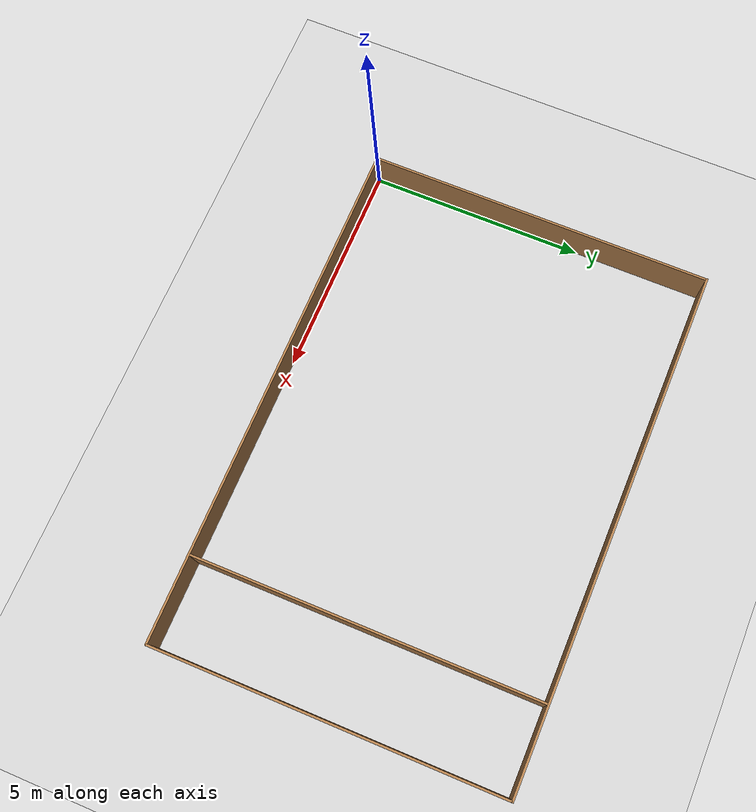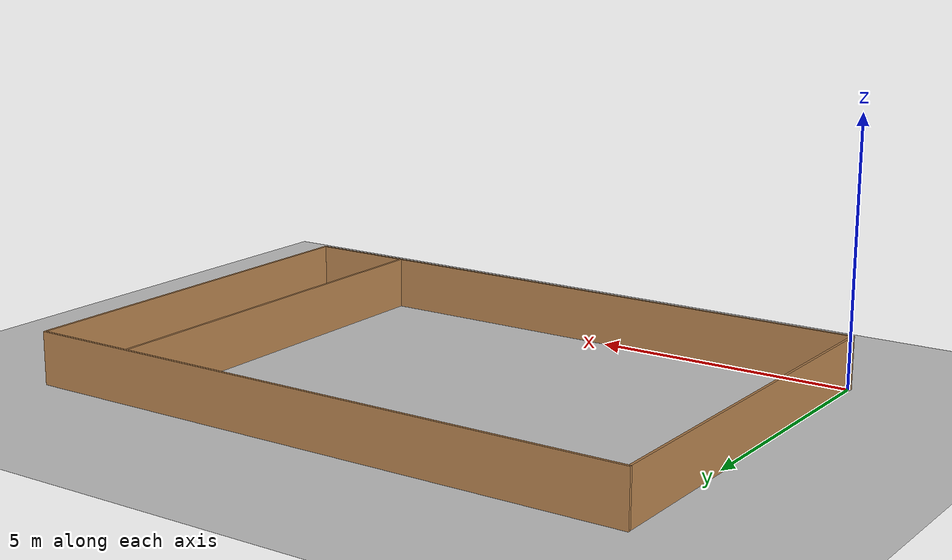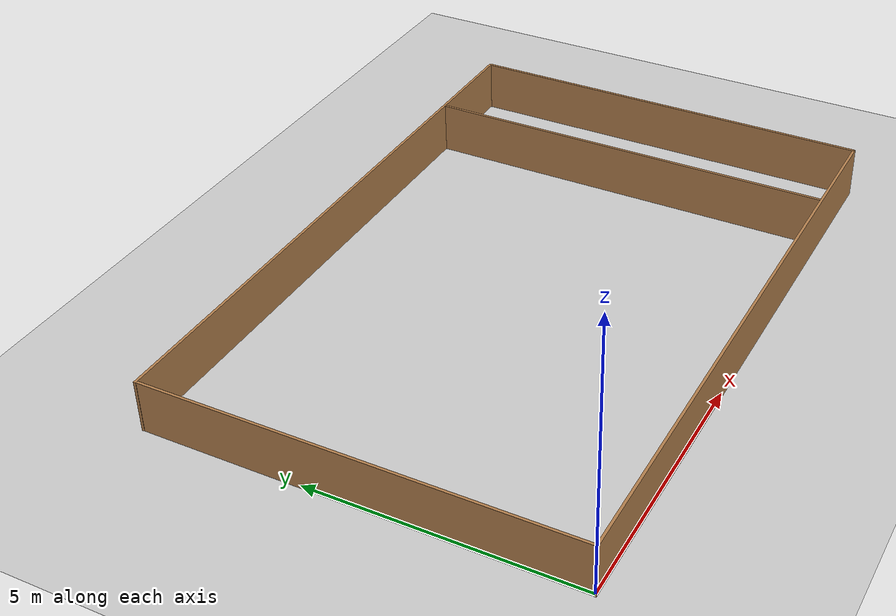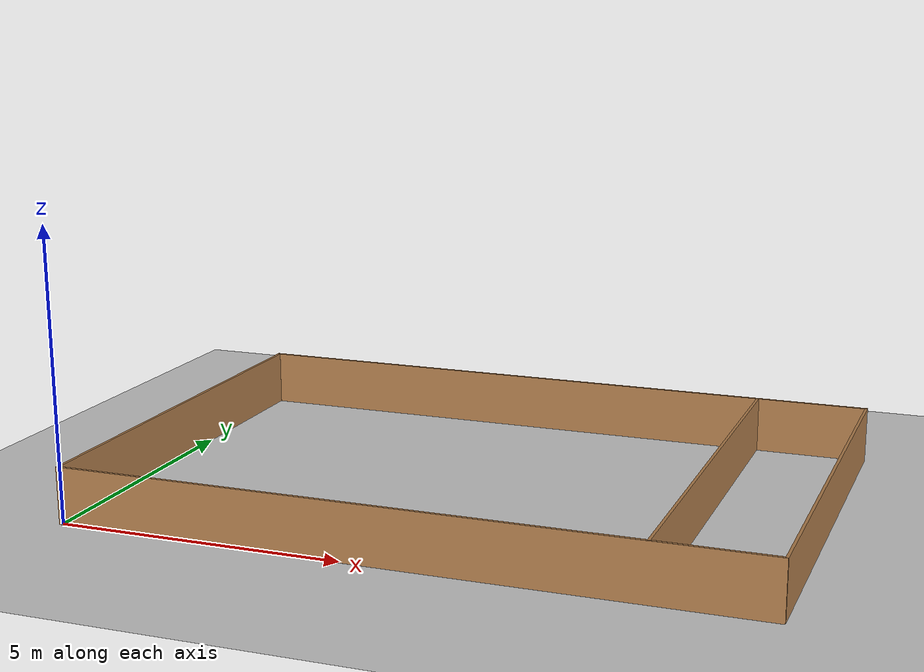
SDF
<sdf version="1.7">
 <world name="default">
  <light name="sun" type="directional">
   <pose>0 0 10 0 -0 0</pose>
   <diffuse>0.8 0.8 0.8 1</diffuse>
   <specular>0.2 0.2 0.2 1</specular>
   <attenuation>
    <range>1000</range>
    <constant>0.9</constant>
    <linear>0.01</linear>
    <quadratic>0.001</quadratic>
   </attenuation>
   <direction>-0.5 0.1 -0.9</direction>
   <spot><inner_angle>0</inner_angle><outer_angle>0</outer_angle><falloff>0</falloff></spot>
  </light>
  <model name="ground_plane">
   <static>1</static>
   <link name="link">
    <collision name="collision">
     <geometry><plane><normal>0 0 1</normal><size>100 100</size></plane></geometry>
     <surface><friction><ode><mu>100</mu><mu2>50</mu2></ode></friction></surface>
    </collision>
    <visual name="visual">
     <cast_shadows>0</cast_shadows>
     <geometry><plane><normal>0 0 1</normal><size>100 100</size></plane></geometry>
     <material>
      <script><uri>file://media/materials/scripts/gazebo.material</uri><name>Gazebo/Grey</name></script>
     </material>
    </visual>
   </link>
  </model>
  <gravity>0 0 -9.8</gravity>
  <magnetic_field>6e-06 2.3e-05 -4.2e-05</magnetic_field>
  <atmosphere type="adiabatic"/>
  <physics type="ode">
   <max_step_size>0.001</max_step_size>
   <real_time_factor>1</real_time_factor>
   <real_time_update_rate>1000</real_time_update_rate>
  </physics>
  <scene><ambient>0.4 0.4 0.4 1</ambient><background>0.7 0.7 0.7 1</background><shadows>1</shadows></scene>
  <spherical_coordinates>
   <surface_model>EARTH_WGS84</surface_model>
   <latitude_deg>0</latitude_deg>
   <longitude_deg>0</longitude_deg>
   <elevation>0</elevation>
   <heading_deg>0</heading_deg>
  </spherical_coordinates>
  <model name="walls">
   <static>1</static>
   <link name="wall_1">
    <pose>7.57 -0.57 0.5 0 -0 0</pose>
    <inertial>
     <mass>1</mass>
     <inertia><ixx>1</ixx><ixy>0</ixy><ixz>0</ixz><iyy>1</iyy><iyz>0</iyz><izz>1</izz></inertia>
    </inertial>
    <collision name="collision"><geometry><box><size>0.05 8 1</size></box></geometry></collision>
    <visual name="visual">
     <geometry><box><size>0.05 8 1</size></box></geometry>
     <material>
      <script>
       <uri>file://usr/share/gazebo-11/media/materials/scripts/gazebo.material</uri>
       <name>Gazebo/Wood</name>
      </script>
     </material>
    </visual>
    <static>1</static>
   </link>
   <link name="wall_2">
    <pose>-4.38 -0.57 0.5 0 -0 0</pose>
    <inertial>
     <mass>1</mass>
     <inertia><ixx>1</ixx><ixy>0</ixy><ixz>0</ixz><iyy>1</iyy><iyz>0</iyz><izz>1</izz></inertia>
    </inertial>
    <collision name="collision"><geometry><box><size>0.05 8 1</size></box></geometry></collision>
    <visual name="visual">
     <geometry><box><size>0.05 8 1</size></box></geometry>
     <material>
      <script>
       <uri>file://usr/share/gazebo-11/media/materials/scripts/gazebo.material</uri>
       <name>Gazebo/Wood</name>
      </script>
     </material>
    </visual>
    <static>1</static>
   </link>
   <link name="wall_3">
    <pose>1.59 -4.56 0.5 0 -0 0</pose>
    <inertial>
     <mass>1</mass>
     <inertia><ixx>1</ixx><ixy>0</ixy><ixz>0</ixz><iyy>1</iyy><iyz>0</iyz><izz>1</izz></inertia>
    </inertial>
    <collision name="collision"><geometry><box><size>12 0.05 1</size></box></geometry></collision>
    <visual name="visual">
     <geometry><box><size>12 0.05 1</size></box></geometry>
     <material>
      <script>
       <uri>file://usr/share/gazebo-11/media/materials/scripts/gazebo.material</uri>
       <name>Gazebo/Wood</name>
      </script>
     </material>
    </visual>
    <static>1</static>
   </link>
   <link name="wall_4">
    <pose>1.59 3.44 0.5 0 -0 0</pose>
    <inertial>
     <mass>1</mass>
     <inertia><ixx>1</ixx><ixy>0</ixy><ixz>0</ixz><iyy>1</iyy><iyz>0</iyz><izz>1</izz></inertia>
    </inertial>
    <collision name="collision"><geometry><box><size>12 0.05 1</size></box></geometry></collision>
    <visual name="visual">
     <geometry><box><size>12 0.05 1</size></box></geometry>
     <material>
      <script>
       <uri>file://usr/share/gazebo-11/media/materials/scripts/gazebo.material</uri>
       <name>Gazebo/Wood</name>
      </script>
     </material>
    </visual>
    <static>1</static>
   </link>
   <link name="wall_5">
    <pose>5.57 -0.57 0.5 0 -0 0</pose>
    <inertial>
     <mass>1</mass>
     <inertia><ixx>1</ixx><ixy>0</ixy><ixz>0</ixz><iyy>1</iyy><iyz>0</iyz><izz>1</izz></inertia>
    </inertial>
    <collision name="collision"><geometry><box><size>0.05 8 1</size></box></geometry></collision>
    <visual name="visual">
     <geometry><box><size>0.05 8 1</size></box></geometry>
     <material>
      <script>
       <uri>file://usr/share/gazebo-11/media/materials/scripts/gazebo.material</uri>
       <name>Gazebo/Wood</name>
      </script>
     </material>
    </visual>
    <static>1</static>
   </link>
   <pose>4.35636 4.54343 0 0 -0 0</pose>
  </model>
 </world>
</sdf>
